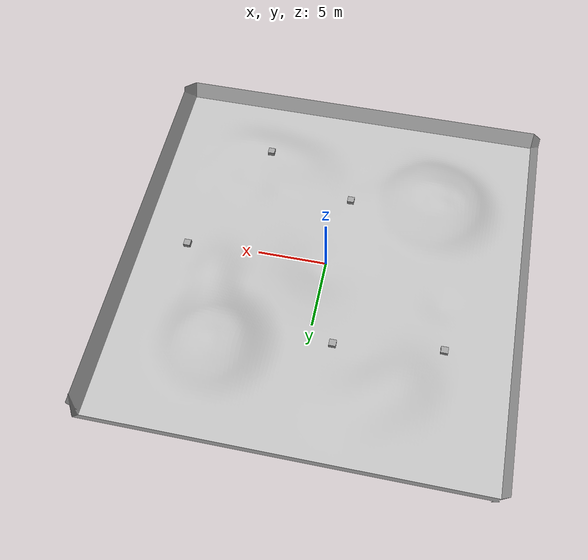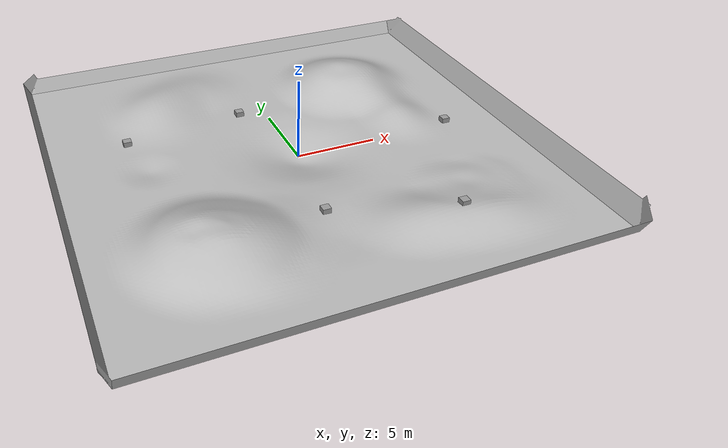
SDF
<sdf version="1.7">
 <world name="default">
  <light name="sun" type="directional">
   <pose>0 0 10 0 -0 0</pose>
   <diffuse>0.8 0.8 0.8 1</diffuse>
   <specular>0.2 0.2 0.2 1</specular>
   <attenuation>
    <range>1000</range>
    <constant>0.9</constant>
    <linear>0.01</linear>
    <quadratic>0.001</quadratic>
   </attenuation>
   <direction>-0.5 0.1 -0.9</direction>
   <spot><inner_angle>0</inner_angle><outer_angle>0</outer_angle><falloff>0</falloff></spot>
  </light>
  <gravity>0 0 -9.8</gravity>
  <magnetic_field>6e-06 2.3e-05 -4.2e-05</magnetic_field>
  <atmosphere type="adiabatic"/>
  <physics type="ode">
   <max_step_size>0.001</max_step_size>
   <real_time_factor>3</real_time_factor>
   <real_time_update_rate>3000</real_time_update_rate>
  </physics>
  <scene><ambient>0.4 0.4 0.4 1</ambient><background>0.7 0.7 0.7 1</background><shadows>1</shadows></scene>
  <spherical_coordinates>
   <surface_model>EARTH_WGS84</surface_model>
   <latitude_deg>0</latitude_deg>
   <longitude_deg>0</longitude_deg>
   <elevation>0</elevation>
   <heading_deg>0</heading_deg>
  </spherical_coordinates>
  <model name="train_stage2">
   <pose>0.14159 0.229978 0 0 -0 0</pose>
   <static>1</static>
   <link name="body">
    <visual name="visual">
     <geometry><mesh><uri>model://train_stage2/media/train_stage2.dae</uri></mesh></geometry>
     <material>
      <script>
       <uri>model://train_stage2/media/scripts</uri>
       <uri>model://train_stage2/media/Textures</uri>
       <name>RepeatedGrass/Diffuse</name>
      </script>
     </material>
    </visual>
    <collision name="collision">
     <geometry><mesh><uri>model://train_stage2/media/train_stage2.dae</uri></mesh></geometry>
    </collision>
   </link>
  </model>
  <model name="stone_50*50*30_0">
   <link name="link">
    <pose>0 0 0.269593 0 -0 0</pose>
    <inertial>
     <mass>187.874</mass>
     <inertia><ixx>5.08232</ixx><ixy>0</ixy><ixz>0</ixz><iyy>5.47596</iyy><iyz>0</iyz><izz>7.48501</izz></inertia>
    </inertial>
    <visual name="visual">
     <geometry><box><size>0.501612 0.475891 0.313286</size></box></geometry>
     <material>
      <script><uri>file://media/materials/scripts/gazebo.material</uri><name>Gazebo/Grey</name></script>
      <shader type="pixel"><normal_map>__default__</normal_map></shader>
      <ambient>0.3 0.3 0.3 1</ambient>
      <diffuse>0.7 0.7 0.7 1</diffuse>
      <specular>0.01 0.01 0.01 1</specular>
      <emissive>0 0 0 1</emissive>
     </material>
    </visual>
    <collision name="collision">
     <geometry><box><size>0.501612 0.47589 0.313286</size></box></geometry>
     <surface>
      <friction>
       <ode><mu>1</mu><mu2>1</mu2><fdir1>0 0 0</fdir1><slip1>0</slip1><slip2>0</slip2></ode>
       <torsional>
        <coefficient>1</coefficient>
        <patch_radius>0</patch_radius>
        <surface_radius>0.01</surface_radius>
        <use_patch_radius>0</use_patch_radius>
        <ode><slip>0</slip></ode>
       </torsional>
      </friction>
      <bounce><restitution_coefficient>0</restitution_coefficient><threshold>1e+06</threshold></bounce>
      <contact>
       <collide_without_contact>0</collide_without_contact>
       <collide_without_contact_bitmask>1</collide_without_contact_bitmask>
       <collide_bitmask>1</collide_bitmask>
       <ode>
        <soft_cfm>0</soft_cfm>
        <soft_erp>0.2</soft_erp>
        <kp>100000</kp>
        <kd>100</kd>
        <max_vel>100</max_vel>
        <min_depth>0.001</min_depth>
       </ode>
       <bullet>
        <split_impulse>1</split_impulse>
        <split_impulse_penetration_threshold>-0.01</split_impulse_penetration_threshold>
        <soft_cfm>0</soft_cfm>
        <soft_erp>0.2</soft_erp>
        <kp>100000</kp>
        <kd>100</kd>
       </bullet>
      </contact>
     </surface>
    </collision>
   </link>
   <static>1</static>
   <pose>6.02163 -8.61034 0.5 0 -0 0</pose>
  </model>
  <model name="stone_50*50*30_1">
   <link name="link">
    <pose>0 0 0.269593 0 -0 0</pose>
    <inertial>
     <mass>187.874</mass>
     <inertia><ixx>5.08232</ixx><ixy>0</ixy><ixz>0</ixz><iyy>5.47596</iyy><iyz>0</iyz><izz>7.48501</izz></inertia>
    </inertial>
    <visual name="visual">
     <geometry><box><size>0.501612 0.475891 0.313286</size></box></geometry>
     <material>
      <script><uri>file://media/materials/scripts/gazebo.material</uri><name>Gazebo/Grey</name></script>
      <shader type="pixel"><normal_map>__default__</normal_map></shader>
      <ambient>0.3 0.3 0.3 1</ambient>
      <diffuse>0.7 0.7 0.7 1</diffuse>
      <specular>0.01 0.01 0.01 1</specular>
      <emissive>0 0 0 1</emissive>
     </material>
    </visual>
    <collision name="collision">
     <geometry><box><size>0.501612 0.47589 0.313286</size></box></geometry>
     <surface>
      <friction>
       <ode><mu>1</mu><mu2>1</mu2><fdir1>0 0 0</fdir1><slip1>0</slip1><slip2>0</slip2></ode>
       <torsional>
        <coefficient>1</coefficient>
        <patch_radius>0</patch_radius>
        <surface_radius>0.01</surface_radius>
        <use_patch_radius>0</use_patch_radius>
        <ode><slip>0</slip></ode>
       </torsional>
      </friction>
      <bounce><restitution_coefficient>0</restitution_coefficient><threshold>1e+06</threshold></bounce>
      <contact>
       <collide_without_contact>0</collide_without_contact>
       <collide_without_contact_bitmask>1</collide_without_contact_bitmask>
       <collide_bitmask>1</collide_bitmask>
       <ode>
        <soft_cfm>0</soft_cfm>
        <soft_erp>0.2</soft_erp>
        <kp>100000</kp>
        <kd>100</kd>
        <max_vel>100</max_vel>
        <min_depth>0.001</min_depth>
       </ode>
       <bullet>
        <split_impulse>1</split_impulse>
        <split_impulse_penetration_threshold>-0.01</split_impulse_penetration_threshold>
        <soft_cfm>0</soft_cfm>
        <soft_erp>0.2</soft_erp>
        <kp>100000</kp>
        <kd>100</kd>
       </bullet>
      </contact>
     </surface>
    </collision>
   </link>
   <static>1</static>
   <pose>-9.22251 5.15991 -0.1 0 -0 0</pose>
  </model>
  <model name="stone_50*50*30_2">
   <link name="link">
    <pose>0 0 0.269593 0 -0 0</pose>
    <inertial>
     <mass>187.874</mass>
     <inertia><ixx>5.08232</ixx><ixy>0</ixy><ixz>0</ixz><iyy>5.47596</iyy><iyz>0</iyz><izz>7.48501</izz></inertia>
    </inertial>
    <visual name="visual">
     <geometry><box><size>0.501612 0.475891 0.313286</size></box></geometry>
     <material>
      <script><uri>file://media/materials/scripts/gazebo.material</uri><name>Gazebo/Grey</name></script>
      <shader type="pixel"><normal_map>__default__</normal_map></shader>
      <ambient>0.3 0.3 0.3 1</ambient>
      <diffuse>0.7 0.7 0.7 1</diffuse>
      <specular>0.01 0.01 0.01 1</specular>
      <emissive>0 0 0 1</emissive>
     </material>
    </visual>
    <collision name="collision">
     <geometry><box><size>0.501612 0.47589 0.313286</size></box></geometry>
     <surface>
      <friction>
       <ode><mu>1</mu><mu2>1</mu2><fdir1>0 0 0</fdir1><slip1>0</slip1><slip2>0</slip2></ode>
       <torsional>
        <coefficient>1</coefficient>
        <patch_radius>0</patch_radius>
        <surface_radius>0.01</surface_radius>
        <use_patch_radius>0</use_patch_radius>
        <ode><slip>0</slip></ode>
       </torsional>
      </friction>
      <bounce><restitution_coefficient>0</restitution_coefficient><threshold>1e+06</threshold></bounce>
      <contact>
       <collide_without_contact>0</collide_without_contact>
       <collide_without_contact_bitmask>1</collide_without_contact_bitmask>
       <collide_bitmask>1</collide_bitmask>
       <ode>
        <soft_cfm>0</soft_cfm>
        <soft_erp>0.2</soft_erp>
        <kp>100000</kp>
        <kd>100</kd>
        <max_vel>100</max_vel>
        <min_depth>0.001</min_depth>
       </ode>
       <bullet>
        <split_impulse>1</split_impulse>
        <split_impulse_penetration_threshold>-0.01</split_impulse_penetration_threshold>
        <soft_cfm>0</soft_cfm>
        <soft_erp>0.2</soft_erp>
        <kp>100000</kp>
        <kd>100</kd>
       </bullet>
      </contact>
     </surface>
    </collision>
   </link>
   <static>1</static>
   <pose>-0.78271 -5.70912 -0.1 0 -0 0</pose>
  </model>
  <model name="stone_50*50*30_3">
   <link name="link">
    <pose>0 0 0.269593 0 -0 0</pose>
    <inertial>
     <mass>187.874</mass>
     <inertia><ixx>5.08232</ixx><ixy>0</ixy><ixz>0</ixz><iyy>5.47596</iyy><iyz>0</iyz><izz>7.48501</izz></inertia>
    </inertial>
    <visual name="visual">
     <geometry><box><size>0.501612 0.475891 0.313286</size></box></geometry>
     <material>
      <script><uri>file://media/materials/scripts/gazebo.material</uri><name>Gazebo/Grey</name></script>
      <shader type="pixel"><normal_map>__default__</normal_map></shader>
      <ambient>0.3 0.3 0.3 1</ambient>
      <diffuse>0.7 0.7 0.7 1</diffuse>
      <specular>0.01 0.01 0.01 1</specular>
      <emissive>0 0 0 1</emissive>
     </material>
    </visual>
    <collision name="collision">
     <geometry><box><size>0.501612 0.47589 0.313286</size></box></geometry>
     <surface>
      <friction>
       <ode><mu>1</mu><mu2>1</mu2><fdir1>0 0 0</fdir1><slip1>0</slip1><slip2>0</slip2></ode>
       <torsional>
        <coefficient>1</coefficient>
        <patch_radius>0</patch_radius>
        <surface_radius>0.01</surface_radius>
        <use_patch_radius>0</use_patch_radius>
        <ode><slip>0</slip></ode>
       </torsional>
      </friction>
      <bounce><restitution_coefficient>0</restitution_coefficient><threshold>1e+06</threshold></bounce>
      <contact>
       <collide_without_contact>0</collide_without_contact>
       <collide_without_contact_bitmask>1</collide_without_contact_bitmask>
       <collide_bitmask>1</collide_bitmask>
       <ode>
        <soft_cfm>0</soft_cfm>
        <soft_erp>0.2</soft_erp>
        <kp>100000</kp>
        <kd>100</kd>
        <max_vel>100</max_vel>
        <min_depth>0.001</min_depth>
       </ode>
       <bullet>
        <split_impulse>1</split_impulse>
        <split_impulse_penetration_threshold>-0.01</split_impulse_penetration_threshold>
        <soft_cfm>0</soft_cfm>
        <soft_erp>0.2</soft_erp>
        <kp>100000</kp>
        <kd>100</kd>
       </bullet>
      </contact>
     </surface>
    </collision>
   </link>
   <static>1</static>
   <pose>-1.66841 6.11699 -0.1 0 -0 0</pose>
  </model>
  <model name="stone_50*50*30_4">
   <link name="link">
    <pose>0 0 0.269593 0 -0 0</pose>
    <inertial>
     <mass>187.874</mass>
     <inertia><ixx>5.08232</ixx><ixy>0</ixy><ixz>0</ixz><iyy>5.47596</iyy><iyz>0</iyz><izz>7.48501</izz></inertia>
    </inertial>
    <visual name="visual">
     <geometry><box><size>0.501612 0.475891 0.313286</size></box></geometry>
     <material>
      <script><uri>file://media/materials/scripts/gazebo.material</uri><name>Gazebo/Grey</name></script>
      <shader type="pixel"><normal_map>__default__</normal_map></shader>
      <ambient>0.3 0.3 0.3 1</ambient>
      <diffuse>0.7 0.7 0.7 1</diffuse>
      <specular>0.01 0.01 0.01 1</specular>
      <emissive>0 0 0 1</emissive>
     </material>
    </visual>
    <collision name="collision">
     <geometry><box><size>0.501612 0.47589 0.313286</size></box></geometry>
     <surface>
      <friction>
       <ode><mu>1</mu><mu2>1</mu2><fdir1>0 0 0</fdir1><slip1>0</slip1><slip2>0</slip2></ode>
       <torsional>
        <coefficient>1</coefficient>
        <patch_radius>0</patch_radius>
        <surface_radius>0.01</surface_radius>
        <use_patch_radius>0</use_patch_radius>
        <ode><slip>0</slip></ode>
       </torsional>
      </friction>
      <bounce><restitution_coefficient>0</restitution_coefficient><threshold>1e+06</threshold></bounce>
      <contact>
       <collide_without_contact>0</collide_without_contact>
       <collide_without_contact_bitmask>1</collide_without_contact_bitmask>
       <collide_bitmask>1</collide_bitmask>
       <ode>
        <soft_cfm>0</soft_cfm>
        <soft_erp>0.2</soft_erp>
        <kp>100000</kp>
        <kd>100</kd>
        <max_vel>100</max_vel>
        <min_depth>0.001</min_depth>
       </ode>
       <bullet>
        <split_impulse>1</split_impulse>
        <split_impulse_penetration_threshold>-0.01</split_impulse_penetration_threshold>
        <soft_cfm>0</soft_cfm>
        <soft_erp>0.2</soft_erp>
        <kp>100000</kp>
        <kd>100</kd>
       </bullet>
      </contact>
     </surface>
    </collision>
   </link>
   <static>1</static>
   <pose>10.3007 0.352321 -0.1 0 -0 0</pose>
  </model>
 </world>
</sdf>
